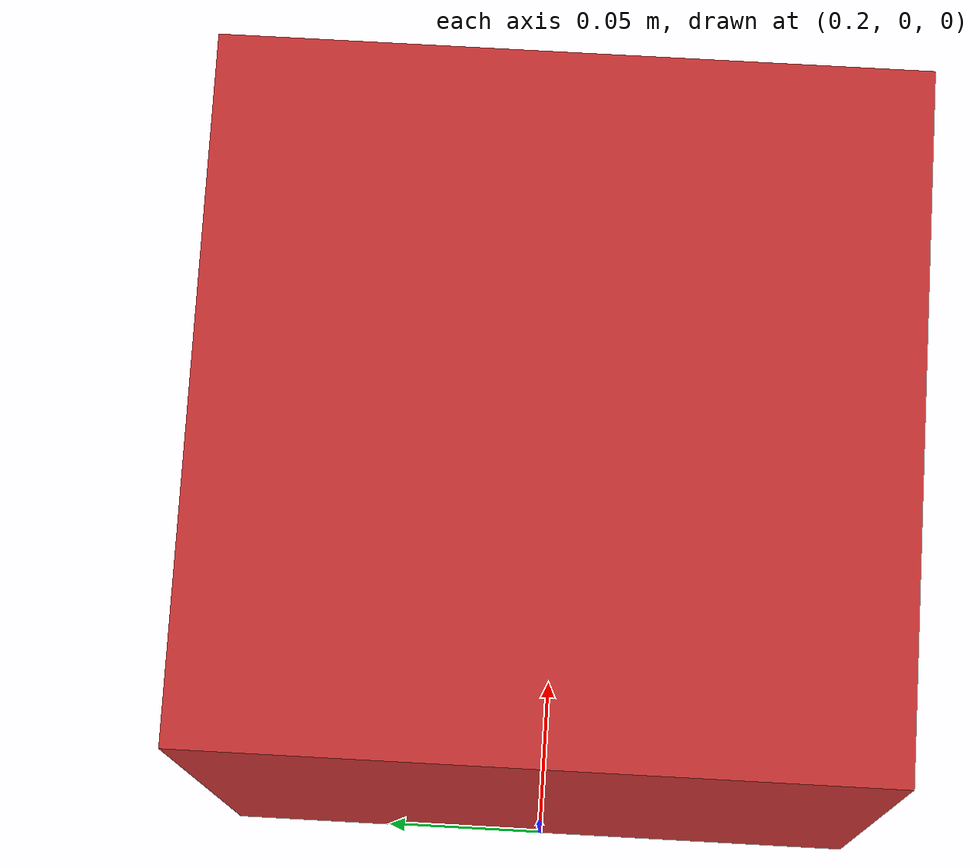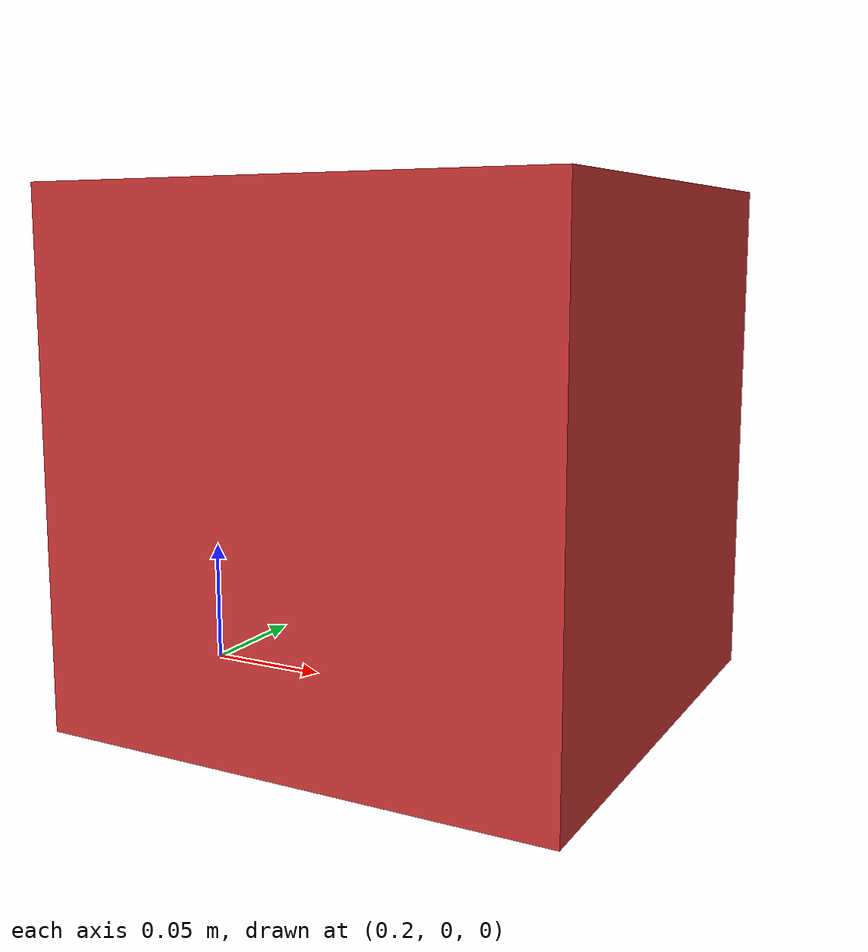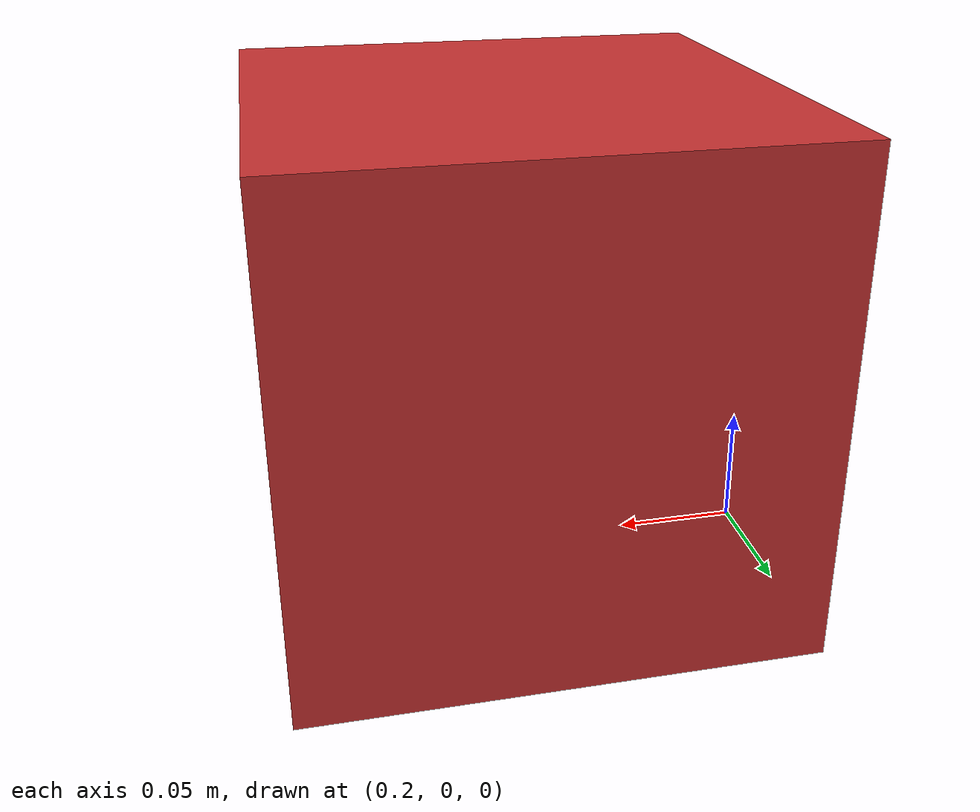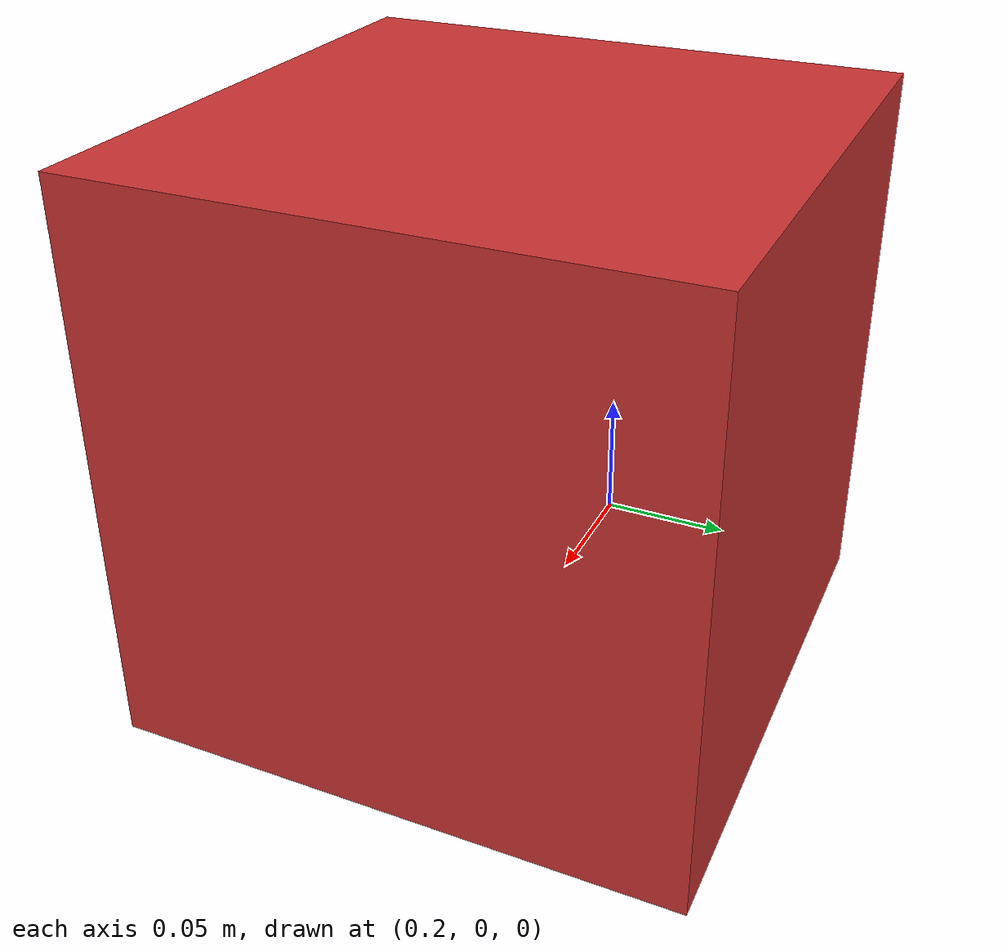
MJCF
<mujoco model="cube_viewer">
  <worldbody>
    <body name="obstacle_body" pos="0.3 0 0.1">
      <geom
        name="obstacle"
        type="box"
        size="0.1 0.1 0.1"
        rgba="0.8 0.2 0.2 1"
        contype="1"
        conaffinity="1"/>
    </body>
  </worldbody>
</mujoco>
